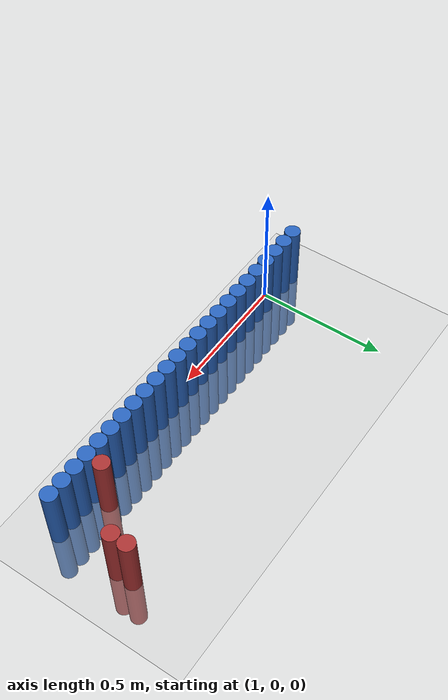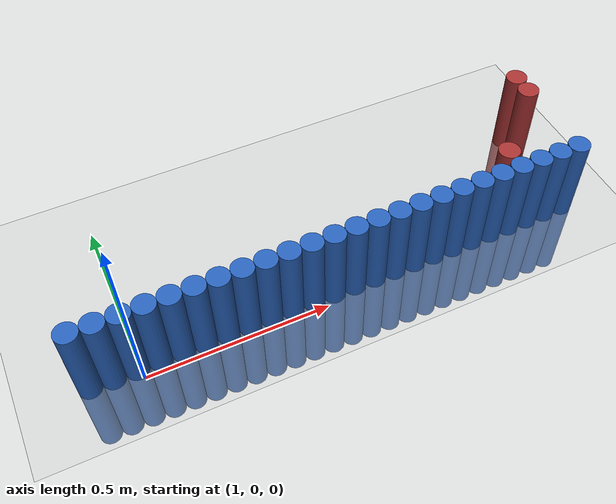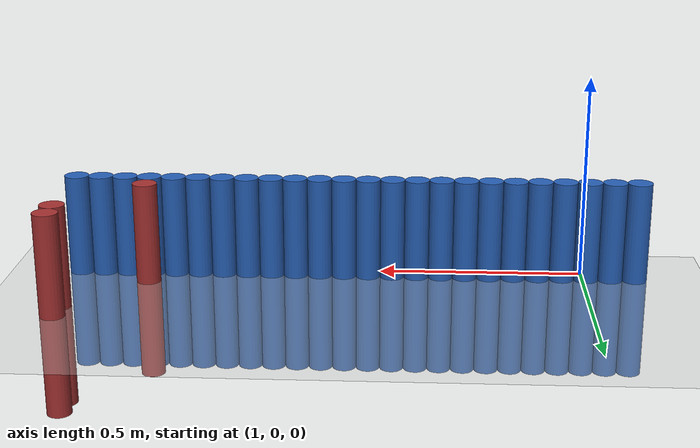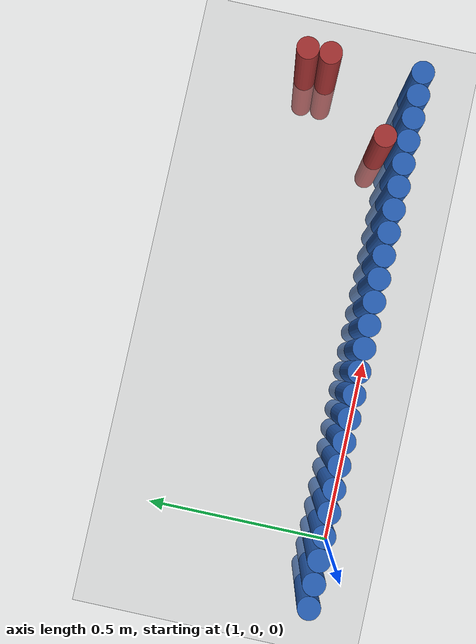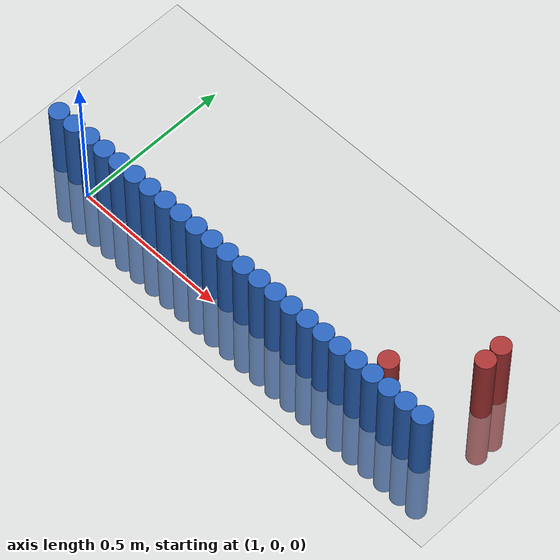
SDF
<sdf version="1.6">
 <world name="default">
  <model name="ground_plane">
   <static>1</static>
   <link name="link">
    <collision name="collision">
     <geometry><plane><normal>0 0 1</normal><size>100 100</size></plane></geometry>
     <surface><friction><ode><mu>100</mu><mu2>50</mu2></ode></friction></surface>
    </collision>
    <visual name="visual">
     <cast_shadows>0</cast_shadows>
     <geometry><plane><normal>0 0 1</normal><size>100 100</size></plane></geometry>
     <material>
      <script><uri>file://media/materials/scripts/gazebo.material</uri><name>Gazebo/Grey</name></script>
     </material>
    </visual>
   </link>
  </model>
  <model name="unit_cylinder_55">
   <static>1</static>
   <pose>0.870000 0.030000 0.000000 0.000000 0.000000 0.000000</pose>
   <link name="link">
    <inertial>
     <mass>1</mass>
     <inertia><ixx>0.145833</ixx><ixy>0</ixy><ixz>0</ixz><iyy>0.145833</iyy><iyz>0</iyz><izz>0.125</izz></inertia>
    </inertial>
    <collision name="collision">
     <geometry><cylinder><radius>0.030000</radius><length>0.5</length></cylinder></geometry>
    </collision>
    <visual name="visual">
     <geometry><cylinder><radius>0.030000</radius><length>0.5</length></cylinder></geometry>
     <material>
      <ambient>0.152000 0.379000 0.720000 1</ambient>
      <diffuse>0.152000 0.379000 0.720000 1</diffuse>
     </material>
     <material>
      <script><name>Gazebo/Grey</name><uri>file://media/materials/scripts/gazebo.material</uri></script>
     </material>
    </visual>
   </link>
  </model>
  <model name="unit_cylinder_57">
   <static>1</static>
   <pose>0.930000 0.030000 0.000000 0.000000 0.000000 0.000000</pose>
   <link name="link">
    <inertial>
     <mass>1</mass>
     <inertia><ixx>0.145833</ixx><ixy>0</ixy><ixz>0</ixz><iyy>0.145833</iyy><iyz>0</iyz><izz>0.125</izz></inertia>
    </inertial>
    <collision name="collision">
     <geometry><cylinder><radius>0.030000</radius><length>0.5</length></cylinder></geometry>
    </collision>
    <visual name="visual">
     <geometry><cylinder><radius>0.030000</radius><length>0.5</length></cylinder></geometry>
     <material>
      <ambient>0.152000 0.379000 0.720000 1</ambient>
      <diffuse>0.152000 0.379000 0.720000 1</diffuse>
     </material>
     <material>
      <script><name>Gazebo/Grey</name><uri>file://media/materials/scripts/gazebo.material</uri></script>
     </material>
    </visual>
   </link>
  </model>
  <model name="unit_cylinder_59">
   <static>1</static>
   <pose>0.990000 0.030000 0.000000 0.000000 0.000000 0.000000</pose>
   <link name="link">
    <inertial>
     <mass>1</mass>
     <inertia><ixx>0.145833</ixx><ixy>0</ixy><ixz>0</ixz><iyy>0.145833</iyy><iyz>0</iyz><izz>0.125</izz></inertia>
    </inertial>
    <collision name="collision">
     <geometry><cylinder><radius>0.030000</radius><length>0.5</length></cylinder></geometry>
    </collision>
    <visual name="visual">
     <geometry><cylinder><radius>0.030000</radius><length>0.5</length></cylinder></geometry>
     <material>
      <ambient>0.152000 0.379000 0.720000 1</ambient>
      <diffuse>0.152000 0.379000 0.720000 1</diffuse>
     </material>
     <material>
      <script><name>Gazebo/Grey</name><uri>file://media/materials/scripts/gazebo.material</uri></script>
     </material>
    </visual>
   </link>
  </model>
  <model name="unit_cylinder_61">
   <static>1</static>
   <pose>1.050000 0.030000 0.000000 0.000000 0.000000 0.000000</pose>
   <link name="link">
    <inertial>
     <mass>1</mass>
     <inertia><ixx>0.145833</ixx><ixy>0</ixy><ixz>0</ixz><iyy>0.145833</iyy><iyz>0</iyz><izz>0.125</izz></inertia>
    </inertial>
    <collision name="collision">
     <geometry><cylinder><radius>0.030000</radius><length>0.5</length></cylinder></geometry>
    </collision>
    <visual name="visual">
     <geometry><cylinder><radius>0.030000</radius><length>0.5</length></cylinder></geometry>
     <material>
      <ambient>0.152000 0.379000 0.720000 1</ambient>
      <diffuse>0.152000 0.379000 0.720000 1</diffuse>
     </material>
     <material>
      <script><name>Gazebo/Grey</name><uri>file://media/materials/scripts/gazebo.material</uri></script>
     </material>
    </visual>
   </link>
  </model>
  <model name="unit_cylinder_63">
   <static>1</static>
   <pose>1.110000 0.030000 0.000000 0.000000 0.000000 0.000000</pose>
   <link name="link">
    <inertial>
     <mass>1</mass>
     <inertia><ixx>0.145833</ixx><ixy>0</ixy><ixz>0</ixz><iyy>0.145833</iyy><iyz>0</iyz><izz>0.125</izz></inertia>
    </inertial>
    <collision name="collision">
     <geometry><cylinder><radius>0.030000</radius><length>0.5</length></cylinder></geometry>
    </collision>
    <visual name="visual">
     <geometry><cylinder><radius>0.030000</radius><length>0.5</length></cylinder></geometry>
     <material>
      <ambient>0.152000 0.379000 0.720000 1</ambient>
      <diffuse>0.152000 0.379000 0.720000 1</diffuse>
     </material>
     <material>
      <script><name>Gazebo/Grey</name><uri>file://media/materials/scripts/gazebo.material</uri></script>
     </material>
    </visual>
   </link>
  </model>
  <model name="unit_cylinder_65">
   <static>1</static>
   <pose>1.170000 0.030000 0.000000 0.000000 0.000000 0.000000</pose>
   <link name="link">
    <inertial>
     <mass>1</mass>
     <inertia><ixx>0.145833</ixx><ixy>0</ixy><ixz>0</ixz><iyy>0.145833</iyy><iyz>0</iyz><izz>0.125</izz></inertia>
    </inertial>
    <collision name="collision">
     <geometry><cylinder><radius>0.030000</radius><length>0.5</length></cylinder></geometry>
    </collision>
    <visual name="visual">
     <geometry><cylinder><radius>0.030000</radius><length>0.5</length></cylinder></geometry>
     <material>
      <ambient>0.152000 0.379000 0.720000 1</ambient>
      <diffuse>0.152000 0.379000 0.720000 1</diffuse>
     </material>
     <material>
      <script><name>Gazebo/Grey</name><uri>file://media/materials/scripts/gazebo.material</uri></script>
     </material>
    </visual>
   </link>
  </model>
  <model name="unit_cylinder_67">
   <static>1</static>
   <pose>1.230000 0.030000 0.000000 0.000000 0.000000 0.000000</pose>
   <link name="link">
    <inertial>
     <mass>1</mass>
     <inertia><ixx>0.145833</ixx><ixy>0</ixy><ixz>0</ixz><iyy>0.145833</iyy><iyz>0</iyz><izz>0.125</izz></inertia>
    </inertial>
    <collision name="collision">
     <geometry><cylinder><radius>0.030000</radius><length>0.5</length></cylinder></geometry>
    </collision>
    <visual name="visual">
     <geometry><cylinder><radius>0.030000</radius><length>0.5</length></cylinder></geometry>
     <material>
      <ambient>0.152000 0.379000 0.720000 1</ambient>
      <diffuse>0.152000 0.379000 0.720000 1</diffuse>
     </material>
     <material>
      <script><name>Gazebo/Grey</name><uri>file://media/materials/scripts/gazebo.material</uri></script>
     </material>
    </visual>
   </link>
  </model>
  <model name="unit_cylinder_69">
   <static>1</static>
   <pose>1.290000 0.030000 0.000000 0.000000 0.000000 0.000000</pose>
   <link name="link">
    <inertial>
     <mass>1</mass>
     <inertia><ixx>0.145833</ixx><ixy>0</ixy><ixz>0</ixz><iyy>0.145833</iyy><iyz>0</iyz><izz>0.125</izz></inertia>
    </inertial>
    <collision name="collision">
     <geometry><cylinder><radius>0.030000</radius><length>0.5</length></cylinder></geometry>
    </collision>
    <visual name="visual">
     <geometry><cylinder><radius>0.030000</radius><length>0.5</length></cylinder></geometry>
     <material>
      <ambient>0.152000 0.379000 0.720000 1</ambient>
      <diffuse>0.152000 0.379000 0.720000 1</diffuse>
     </material>
     <material>
      <script><name>Gazebo/Grey</name><uri>file://media/materials/scripts/gazebo.material</uri></script>
     </material>
    </visual>
   </link>
  </model>
  <model name="unit_cylinder_71">
   <static>1</static>
   <pose>1.350000 0.030000 0.000000 0.000000 0.000000 0.000000</pose>
   <link name="link">
    <inertial>
     <mass>1</mass>
     <inertia><ixx>0.145833</ixx><ixy>0</ixy><ixz>0</ixz><iyy>0.145833</iyy><iyz>0</iyz><izz>0.125</izz></inertia>
    </inertial>
    <collision name="collision">
     <geometry><cylinder><radius>0.030000</radius><length>0.5</length></cylinder></geometry>
    </collision>
    <visual name="visual">
     <geometry><cylinder><radius>0.030000</radius><length>0.5</length></cylinder></geometry>
     <material>
      <ambient>0.152000 0.379000 0.720000 1</ambient>
      <diffuse>0.152000 0.379000 0.720000 1</diffuse>
     </material>
     <material>
      <script><name>Gazebo/Grey</name><uri>file://media/materials/scripts/gazebo.material</uri></script>
     </material>
    </visual>
   </link>
  </model>
  <model name="unit_cylinder_73">
   <static>1</static>
   <pose>1.410000 0.030000 0.000000 0.000000 0.000000 0.000000</pose>
   <link name="link">
    <inertial>
     <mass>1</mass>
     <inertia><ixx>0.145833</ixx><ixy>0</ixy><ixz>0</ixz><iyy>0.145833</iyy><iyz>0</iyz><izz>0.125</izz></inertia>
    </inertial>
    <collision name="collision">
     <geometry><cylinder><radius>0.030000</radius><length>0.5</length></cylinder></geometry>
    </collision>
    <visual name="visual">
     <geometry><cylinder><radius>0.030000</radius><length>0.5</length></cylinder></geometry>
     <material>
      <ambient>0.152000 0.379000 0.720000 1</ambient>
      <diffuse>0.152000 0.379000 0.720000 1</diffuse>
     </material>
     <material>
      <script><name>Gazebo/Grey</name><uri>file://media/materials/scripts/gazebo.material</uri></script>
     </material>
    </visual>
   </link>
  </model>
  <model name="unit_cylinder_75">
   <static>1</static>
   <pose>1.470000 0.030000 0.000000 0.000000 0.000000 0.000000</pose>
   <link name="link">
    <inertial>
     <mass>1</mass>
     <inertia><ixx>0.145833</ixx><ixy>0</ixy><ixz>0</ixz><iyy>0.145833</iyy><iyz>0</iyz><izz>0.125</izz></inertia>
    </inertial>
    <collision name="collision">
     <geometry><cylinder><radius>0.030000</radius><length>0.5</length></cylinder></geometry>
    </collision>
    <visual name="visual">
     <geometry><cylinder><radius>0.030000</radius><length>0.5</length></cylinder></geometry>
     <material>
      <ambient>0.152000 0.379000 0.720000 1</ambient>
      <diffuse>0.152000 0.379000 0.720000 1</diffuse>
     </material>
     <material>
      <script><name>Gazebo/Grey</name><uri>file://media/materials/scripts/gazebo.material</uri></script>
     </material>
    </visual>
   </link>
  </model>
  <model name="unit_cylinder_77">
   <static>1</static>
   <pose>1.530000 0.030000 0.000000 0.000000 0.000000 0.000000</pose>
   <link name="link">
    <inertial>
     <mass>1</mass>
     <inertia><ixx>0.145833</ixx><ixy>0</ixy><ixz>0</ixz><iyy>0.145833</iyy><iyz>0</iyz><izz>0.125</izz></inertia>
    </inertial>
    <collision name="collision">
     <geometry><cylinder><radius>0.030000</radius><length>0.5</length></cylinder></geometry>
    </collision>
    <visual name="visual">
     <geometry><cylinder><radius>0.030000</radius><length>0.5</length></cylinder></geometry>
     <material>
      <ambient>0.152000 0.379000 0.720000 1</ambient>
      <diffuse>0.152000 0.379000 0.720000 1</diffuse>
     </material>
     <material>
      <script><name>Gazebo/Grey</name><uri>file://media/materials/scripts/gazebo.material</uri></script>
     </material>
    </visual>
   </link>
  </model>
  <model name="unit_cylinder_79">
   <static>1</static>
   <pose>1.590000 0.030000 0.000000 0.000000 0.000000 0.000000</pose>
   <link name="link">
    <inertial>
     <mass>1</mass>
     <inertia><ixx>0.145833</ixx><ixy>0</ixy><ixz>0</ixz><iyy>0.145833</iyy><iyz>0</iyz><izz>0.125</izz></inertia>
    </inertial>
    <collision name="collision">
     <geometry><cylinder><radius>0.030000</radius><length>0.5</length></cylinder></geometry>
    </collision>
    <visual name="visual">
     <geometry><cylinder><radius>0.030000</radius><length>0.5</length></cylinder></geometry>
     <material>
      <ambient>0.152000 0.379000 0.720000 1</ambient>
      <diffuse>0.152000 0.379000 0.720000 1</diffuse>
     </material>
     <material>
      <script><name>Gazebo/Grey</name><uri>file://media/materials/scripts/gazebo.material</uri></script>
     </material>
    </visual>
   </link>
  </model>
  <model name="unit_cylinder_81">
   <static>1</static>
   <pose>1.650000 0.030000 0.000000 0.000000 0.000000 0.000000</pose>
   <link name="link">
    <inertial>
     <mass>1</mass>
     <inertia><ixx>0.145833</ixx><ixy>0</ixy><ixz>0</ixz><iyy>0.145833</iyy><iyz>0</iyz><izz>0.125</izz></inertia>
    </inertial>
    <collision name="collision">
     <geometry><cylinder><radius>0.030000</radius><length>0.5</length></cylinder></geometry>
    </collision>
    <visual name="visual">
     <geometry><cylinder><radius>0.030000</radius><length>0.5</length></cylinder></geometry>
     <material>
      <ambient>0.152000 0.379000 0.720000 1</ambient>
      <diffuse>0.152000 0.379000 0.720000 1</diffuse>
     </material>
     <material>
      <script><name>Gazebo/Grey</name><uri>file://media/materials/scripts/gazebo.material</uri></script>
     </material>
    </visual>
   </link>
  </model>
  <model name="unit_cylinder_83">
   <static>1</static>
   <pose>1.710000 0.030000 0.000000 0.000000 0.000000 0.000000</pose>
   <link name="link">
    <inertial>
     <mass>1</mass>
     <inertia><ixx>0.145833</ixx><ixy>0</ixy><ixz>0</ixz><iyy>0.145833</iyy><iyz>0</iyz><izz>0.125</izz></inertia>
    </inertial>
    <collision name="collision">
     <geometry><cylinder><radius>0.030000</radius><length>0.5</length></cylinder></geometry>
    </collision>
    <visual name="visual">
     <geometry><cylinder><radius>0.030000</radius><length>0.5</length></cylinder></geometry>
     <material>
      <ambient>0.152000 0.379000 0.720000 1</ambient>
      <diffuse>0.152000 0.379000 0.720000 1</diffuse>
     </material>
     <material>
      <script><name>Gazebo/Grey</name><uri>file://media/materials/scripts/gazebo.material</uri></script>
     </material>
    </visual>
   </link>
  </model>
  <model name="unit_cylinder_85">
   <static>1</static>
   <pose>1.770000 0.030000 0.000000 0.000000 0.000000 0.000000</pose>
   <link name="link">
    <inertial>
     <mass>1</mass>
     <inertia><ixx>0.145833</ixx><ixy>0</ixy><ixz>0</ixz><iyy>0.145833</iyy><iyz>0</iyz><izz>0.125</izz></inertia>
    </inertial>
    <collision name="collision">
     <geometry><cylinder><radius>0.030000</radius><length>0.5</length></cylinder></geometry>
    </collision>
    <visual name="visual">
     <geometry><cylinder><radius>0.030000</radius><length>0.5</length></cylinder></geometry>
     <material>
      <ambient>0.152000 0.379000 0.720000 1</ambient>
      <diffuse>0.152000 0.379000 0.720000 1</diffuse>
     </material>
     <material>
      <script><name>Gazebo/Grey</name><uri>file://media/materials/scripts/gazebo.material</uri></script>
     </material>
    </visual>
   </link>
  </model>
  <model name="unit_cylinder_87">
   <static>1</static>
   <pose>1.830000 0.030000 0.000000 0.000000 0.000000 0.000000</pose>
   <link name="link">
    <inertial>
     <mass>1</mass>
     <inertia><ixx>0.145833</ixx><ixy>0</ixy><ixz>0</ixz><iyy>0.145833</iyy><iyz>0</iyz><izz>0.125</izz></inertia>
    </inertial>
    <collision name="collision">
     <geometry><cylinder><radius>0.030000</radius><length>0.5</length></cylinder></geometry>
    </collision>
    <visual name="visual">
     <geometry><cylinder><radius>0.030000</radius><length>0.5</length></cylinder></geometry>
     <material>
      <ambient>0.152000 0.379000 0.720000 1</ambient>
      <diffuse>0.152000 0.379000 0.720000 1</diffuse>
     </material>
     <material>
      <script><name>Gazebo/Grey</name><uri>file://media/materials/scripts/gazebo.material</uri></script>
     </material>
    </visual>
   </link>
  </model>
  <model name="unit_cylinder_89">
   <static>1</static>
   <pose>1.890000 0.030000 0.000000 0.000000 0.000000 0.000000</pose>
   <link name="link">
    <inertial>
     <mass>1</mass>
     <inertia><ixx>0.145833</ixx><ixy>0</ixy><ixz>0</ixz><iyy>0.145833</iyy><iyz>0</iyz><izz>0.125</izz></inertia>
    </inertial>
    <collision name="collision">
     <geometry><cylinder><radius>0.030000</radius><length>0.5</length></cylinder></geometry>
    </collision>
    <visual name="visual">
     <geometry><cylinder><radius>0.030000</radius><length>0.5</length></cylinder></geometry>
     <material>
      <ambient>0.152000 0.379000 0.720000 1</ambient>
      <diffuse>0.152000 0.379000 0.720000 1</diffuse>
     </material>
     <material>
      <script><name>Gazebo/Grey</name><uri>file://media/materials/scripts/gazebo.material</uri></script>
     </material>
    </visual>
   </link>
  </model>
  <model name="unit_cylinder_91">
   <static>1</static>
   <pose>1.950000 0.030000 0.000000 0.000000 0.000000 0.000000</pose>
   <link name="link">
    <inertial>
     <mass>1</mass>
     <inertia><ixx>0.145833</ixx><ixy>0</ixy><ixz>0</ixz><iyy>0.145833</iyy><iyz>0</iyz><izz>0.125</izz></inertia>
    </inertial>
    <collision name="collision">
     <geometry><cylinder><radius>0.030000</radius><length>0.5</length></cylinder></geometry>
    </collision>
    <visual name="visual">
     <geometry><cylinder><radius>0.030000</radius><length>0.5</length></cylinder></geometry>
     <material>
      <ambient>0.152000 0.379000 0.720000 1</ambient>
      <diffuse>0.152000 0.379000 0.720000 1</diffuse>
     </material>
     <material>
      <script><name>Gazebo/Grey</name><uri>file://media/materials/scripts/gazebo.material</uri></script>
     </material>
    </visual>
   </link>
  </model>
  <model name="unit_cylinder_93">
   <static>1</static>
   <pose>2.010000 0.030000 0.000000 0.000000 0.000000 0.000000</pose>
   <link name="link">
    <inertial>
     <mass>1</mass>
     <inertia><ixx>0.145833</ixx><ixy>0</ixy><ixz>0</ixz><iyy>0.145833</iyy><iyz>0</iyz><izz>0.125</izz></inertia>
    </inertial>
    <collision name="collision">
     <geometry><cylinder><radius>0.030000</radius><length>0.5</length></cylinder></geometry>
    </collision>
    <visual name="visual">
     <geometry><cylinder><radius>0.030000</radius><length>0.5</length></cylinder></geometry>
     <material>
      <ambient>0.152000 0.379000 0.720000 1</ambient>
      <diffuse>0.152000 0.379000 0.720000 1</diffuse>
     </material>
     <material>
      <script><name>Gazebo/Grey</name><uri>file://media/materials/scripts/gazebo.material</uri></script>
     </material>
    </visual>
   </link>
  </model>
  <model name="unit_cylinder_152">
   <static>1</static>
   <pose>2.250000 0.330000 0.000000 0.000000 0.000000 0.000000</pose>
   <link name="link">
    <inertial>
     <mass>1</mass>
     <inertia><ixx>0.145833</ixx><ixy>0</ixy><ixz>0</ixz><iyy>0.145833</iyy><iyz>0</iyz><izz>0.125</izz></inertia>
    </inertial>
    <collision name="collision">
     <geometry><cylinder><radius>0.030000</radius><length>0.5</length></cylinder></geometry>
    </collision>
    <visual name="visual">
     <geometry><cylinder><radius>0.030000</radius><length>0.5</length></cylinder></geometry>
     <material>
      <ambient>0.648000 0.192000 0.192000 1</ambient>
      <diffuse>0.648000 0.192000 0.192000 1</diffuse>
     </material>
     <material>
      <script><name>Gazebo/Grey</name><uri>file://media/materials/scripts/gazebo.material</uri></script>
     </material>
    </visual>
   </link>
  </model>
  <model name="unit_cylinder_154">
   <static>1</static>
   <pose>2.250000 0.270000 0.000000 0.000000 0.000000 0.000000</pose>
   <link name="link">
    <inertial>
     <mass>1</mass>
     <inertia><ixx>0.145833</ixx><ixy>0</ixy><ixz>0</ixz><iyy>0.145833</iyy><iyz>0</iyz><izz>0.125</izz></inertia>
    </inertial>
    <collision name="collision">
     <geometry><cylinder><radius>0.030000</radius><length>0.5</length></cylinder></geometry>
    </collision>
    <visual name="visual">
     <geometry><cylinder><radius>0.030000</radius><length>0.5</length></cylinder></geometry>
     <material>
      <ambient>0.648000 0.192000 0.192000 1</ambient>
      <diffuse>0.648000 0.192000 0.192000 1</diffuse>
     </material>
     <material>
      <script><name>Gazebo/Grey</name><uri>file://media/materials/scripts/gazebo.material</uri></script>
     </material>
    </visual>
   </link>
  </model>
  <model name="unit_cylinder_172">
   <static>1</static>
   <pose>2.070000 0.090000 0.000000 0.000000 0.000000 0.000000</pose>
   <link name="link">
    <inertial>
     <mass>1</mass>
     <inertia><ixx>0.145833</ixx><ixy>0</ixy><ixz>0</ixz><iyy>0.145833</iyy><iyz>0</iyz><izz>0.125</izz></inertia>
    </inertial>
    <collision name="collision">
     <geometry><cylinder><radius>0.030000</radius><length>0.5</length></cylinder></geometry>
    </collision>
    <visual name="visual">
     <geometry><cylinder><radius>0.030000</radius><length>0.5</length></cylinder></geometry>
     <material>
      <ambient>0.648000 0.192000 0.192000 1</ambient>
      <diffuse>0.648000 0.192000 0.192000 1</diffuse>
     </material>
     <material>
      <script><name>Gazebo/Grey</name><uri>file://media/materials/scripts/gazebo.material</uri></script>
     </material>
    </visual>
   </link>
  </model>
  <model name="unit_cylinder_189">
   <static>1</static>
   <pose>2.070000 0.030000 0.000000 0.000000 0.000000 0.000000</pose>
   <link name="link">
    <inertial>
     <mass>1</mass>
     <inertia><ixx>0.145833</ixx><ixy>0</ixy><ixz>0</ixz><iyy>0.145833</iyy><iyz>0</iyz><izz>0.125</izz></inertia>
    </inertial>
    <collision name="collision">
     <geometry><cylinder><radius>0.030000</radius><length>0.5</length></cylinder></geometry>
    </collision>
    <visual name="visual">
     <geometry><cylinder><radius>0.030000</radius><length>0.5</length></cylinder></geometry>
     <material>
      <ambient>0.152000 0.379000 0.720000 1</ambient>
      <diffuse>0.152000 0.379000 0.720000 1</diffuse>
     </material>
     <material>
      <script><name>Gazebo/Grey</name><uri>file://media/materials/scripts/gazebo.material</uri></script>
     </material>
    </visual>
   </link>
  </model>
  <model name="unit_cylinder_190">
   <static>1</static>
   <pose>2.130000 0.030000 0.000000 0.000000 0.000000 0.000000</pose>
   <link name="link">
    <inertial>
     <mass>1</mass>
     <inertia><ixx>0.145833</ixx><ixy>0</ixy><ixz>0</ixz><iyy>0.145833</iyy><iyz>0</iyz><izz>0.125</izz></inertia>
    </inertial>
    <collision name="collision">
     <geometry><cylinder><radius>0.030000</radius><length>0.5</length></cylinder></geometry>
    </collision>
    <visual name="visual">
     <geometry><cylinder><radius>0.030000</radius><length>0.5</length></cylinder></geometry>
     <material>
      <ambient>0.152000 0.379000 0.720000 1</ambient>
      <diffuse>0.152000 0.379000 0.720000 1</diffuse>
     </material>
     <material>
      <script><name>Gazebo/Grey</name><uri>file://media/materials/scripts/gazebo.material</uri></script>
     </material>
    </visual>
   </link>
  </model>
  <model name="unit_cylinder_191">
   <static>1</static>
   <pose>2.190000 0.030000 0.000000 0.000000 0.000000 0.000000</pose>
   <link name="link">
    <inertial>
     <mass>1</mass>
     <inertia><ixx>0.145833</ixx><ixy>0</ixy><ixz>0</ixz><iyy>0.145833</iyy><iyz>0</iyz><izz>0.125</izz></inertia>
    </inertial>
    <collision name="collision">
     <geometry><cylinder><radius>0.030000</radius><length>0.5</length></cylinder></geometry>
    </collision>
    <visual name="visual">
     <geometry><cylinder><radius>0.030000</radius><length>0.5</length></cylinder></geometry>
     <material>
      <ambient>0.152000 0.379000 0.720000 1</ambient>
      <diffuse>0.152000 0.379000 0.720000 1</diffuse>
     </material>
     <material>
      <script><name>Gazebo/Grey</name><uri>file://media/materials/scripts/gazebo.material</uri></script>
     </material>
    </visual>
   </link>
  </model>
  <model name="unit_cylinder_192">
   <static>1</static>
   <pose>2.250000 0.030000 0.000000 0.000000 0.000000 0.000000</pose>
   <link name="link">
    <inertial>
     <mass>1</mass>
     <inertia><ixx>0.145833</ixx><ixy>0</ixy><ixz>0</ixz><iyy>0.145833</iyy><iyz>0</iyz><izz>0.125</izz></inertia>
    </inertial>
    <collision name="collision">
     <geometry><cylinder><radius>0.030000</radius><length>0.5</length></cylinder></geometry>
    </collision>
    <visual name="visual">
     <geometry><cylinder><radius>0.030000</radius><length>0.5</length></cylinder></geometry>
     <material>
      <ambient>0.152000 0.379000 0.720000 1</ambient>
      <diffuse>0.152000 0.379000 0.720000 1</diffuse>
     </material>
     <material>
      <script><name>Gazebo/Grey</name><uri>file://media/materials/scripts/gazebo.material</uri></script>
     </material>
    </visual>
   </link>
  </model>
 </world>
</sdf>
